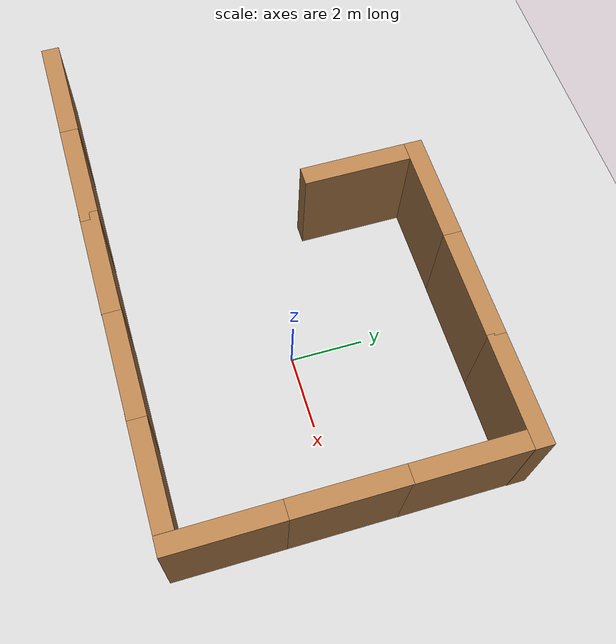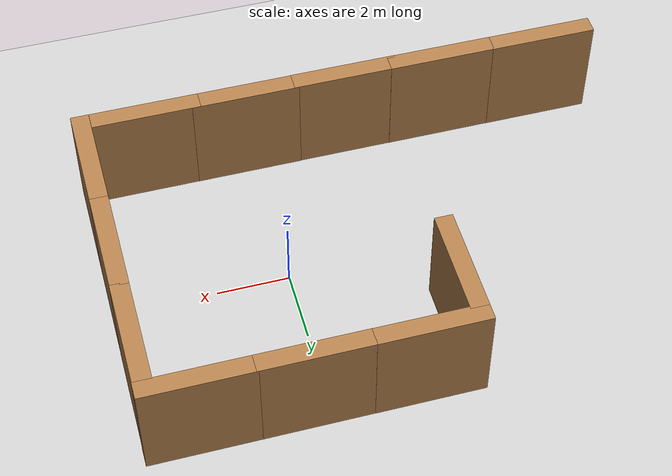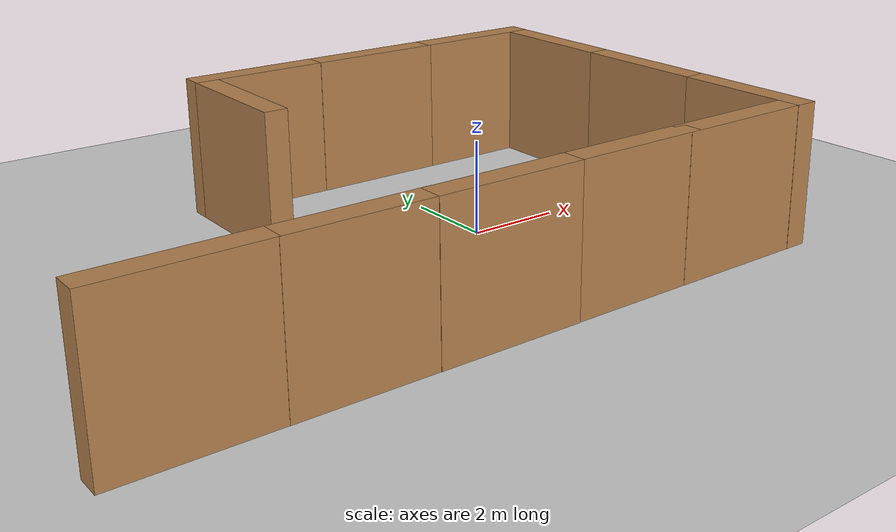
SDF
<sdf version='1.10'>
  <world name='world_wall'>
    <physics name='1ms' type='ignored'>
      <max_step_size>0.001</max_step_size>
      <real_time_factor>1</real_time_factor>
      <real_time_update_rate>1000</real_time_update_rate>
    </physics>
    <plugin name='gz::sim::systems::Physics' filename='gz-sim-physics-system'/>
    <plugin name='gz::sim::systems::UserCommands' filename='gz-sim-user-commands-system'/>
    <plugin name='gz::sim::systems::SceneBroadcaster' filename='gz-sim-scene-broadcaster-system'/>
    <plugin name='gz::sim::systems::Contact' filename='gz-sim-contact-system'/>
    <plugin name='gz::sim::systems::Sensors' filename='gz-sim-sensors-system'>
      <render_engine>ogre2</render_engine>
    </plugin>
    <gravity>0 0 -9.8000000000000007</gravity>
    <magnetic_field>5.5644999999999998e-06 2.2875799999999999e-05 -4.2388400000000002e-05</magnetic_field>
    <atmosphere type='adiabatic'/>
    <scene>
      <ambient>0.400000006 0.400000006 0.400000006 1</ambient>
      <background>0.699999988 0.699999988 0.699999988 1</background>
      <shadows>true</shadows>
    </scene>
    <model name='ground_plane'>
      <static>true</static>
      <link name='link'>
        <collision name='collision'>
          <geometry>
            <plane>
              <normal>0 0 1</normal>
              <size>100 100</size>
            </plane>
          </geometry>
          <surface>
            <friction>
              <ode/>
            </friction>
            <bounce/>
            <contact/>
          </surface>
        </collision>
        <visual name='visual'>
          <geometry>
            <plane>
              <normal>0 0 1</normal>
              <size>100 100</size>
            </plane>
          </geometry>
          <material>
            <ambient>0.800000012 0.800000012 0.800000012 1</ambient>
            <diffuse>0.800000012 0.800000012 0.800000012 1</diffuse>
            <specular>0.800000012 0.800000012 0.800000012 1</specular>
          </material>
        </visual>
        <pose>0 0 0 0 0 0</pose>
        <inertial>
          <pose>0 0 0 0 0 0</pose>
          <mass>1</mass>
          <inertia>
            <ixx>1</ixx>
            <ixy>0</ixy>
            <ixz>0</ixz>
            <iyy>1</iyy>
            <iyz>0</iyz>
            <izz>1</izz>
          </inertia>
        </inertial>
        <enable_wind>false</enable_wind>
      </link>
      <pose>0 0 0 0 0 0</pose>
      <self_collide>false</self_collide>
    </model>
    <model name='brick_box_3x1x3'>
      <static>true</static>
      <link name='chassis'>
        <pose>0 0 1.5 0 0 0</pose>
        <collision name='collision'>
          <geometry>
            <box>
              <size>3 0.5 3</size>
            </box>
          </geometry>
          <surface>
            <friction>
              <ode/>
            </friction>
            <bounce/>
            <contact/>
          </surface>
        </collision>
        <visual name='visual'>
          <geometry>
            <mesh>
              <uri>file:/home/dhairya/gazebo_models/brick_box_3x1x3/model://brick_box_3x1x3/meshes/simple_box.dae</uri>
              <scale>3 0.5 3</scale>
            </mesh>
          </geometry>
          <material>
            <diffuse>1 1 1 1</diffuse>
            <script>
              <uri>file://media/materials/scripts/gazebo.material</uri>
              <name>Gazebo/Wood</name>
            </script>
            <pbr>
              <metal>
                <albedo_map>model://brick_box_3x1x3/materials/textures/simple_box.png</albedo_map>
              </metal>
            </pbr>
          </material>
        </visual>
        <inertial>
          <pose>0 0 0 0 0 0</pose>
          <mass>1</mass>
          <inertia>
            <ixx>1</ixx>
            <ixy>0</ixy>
            <ixz>0</ixz>
            <iyy>1</iyy>
            <iyz>0</iyz>
            <izz>1</izz>
          </inertia>
        </inertial>
        <enable_wind>false</enable_wind>
      </link>
      <pose>-8.5015096664428711 -4.329890251159668 0 0 0 0</pose>
      <self_collide>false</self_collide>
    </model>
    <model name='brick_box_3x1x3_0'>
      <static>true</static>
      <link name='chassis'>
        <pose>0 0 1.5 0 0 0</pose>
        <collision name='collision'>
          <geometry>
            <box>
              <size>3 0.5 3</size>
            </box>
          </geometry>
          <surface>
            <friction>
              <ode/>
            </friction>
            <bounce/>
            <contact/>
          </surface>
        </collision>
        <visual name='visual'>
          <geometry>
            <mesh>
              <uri>file:/home/dhairya/gazebo_models/brick_box_3x1x3/model://brick_box_3x1x3/meshes/simple_box.dae</uri>
              <scale>3 0.5 3</scale>
            </mesh>
          </geometry>
          <material>
            <diffuse>1 1 1 1</diffuse>
            <script>
              <uri>file://media/materials/scripts/gazebo.material</uri>
              <name>Gazebo/Wood</name>
            </script>
            <pbr>
              <metal>
                <albedo_map>model://brick_box_3x1x3/materials/textures/simple_box.png</albedo_map>
              </metal>
            </pbr>
          </material>
        </visual>
        <inertial>
          <pose>0 0 0 0 0 0</pose>
          <mass>1</mass>
          <inertia>
            <ixx>1</ixx>
            <ixy>0</ixy>
            <ixz>0</ixz>
            <iyy>1</iyy>
            <iyz>0</iyz>
            <izz>1</izz>
          </inertia>
        </inertial>
        <enable_wind>false</enable_wind>
      </link>
      <pose>-5.5333199501037598 -4.333956241607666 0 0 0 0</pose>
      <self_collide>false</self_collide>
    </model>
    <model name='brick_box_3x1x3_1'>
      <static>true</static>
      <link name='chassis'>
        <pose>0 0 1.5 0 0 0</pose>
        <collision name='collision'>
          <geometry>
            <box>
              <size>3 0.5 3</size>
            </box>
          </geometry>
          <surface>
            <friction>
              <ode/>
            </friction>
            <bounce/>
            <contact/>
          </surface>
        </collision>
        <visual name='visual'>
          <geometry>
            <mesh>
              <uri>file:/home/dhairya/gazebo_models/brick_box_3x1x3/model://brick_box_3x1x3/meshes/simple_box.dae</uri>
              <scale>3 0.5 3</scale>
            </mesh>
          </geometry>
          <material>
            <diffuse>1 1 1 1</diffuse>
            <script>
              <uri>file://media/materials/scripts/gazebo.material</uri>
              <name>Gazebo/Wood</name>
            </script>
            <pbr>
              <metal>
                <albedo_map>model://brick_box_3x1x3/materials/textures/simple_box.png</albedo_map>
              </metal>
            </pbr>
          </material>
        </visual>
        <inertial>
          <pose>0 0 0 0 0 0</pose>
          <mass>1</mass>
          <inertia>
            <ixx>1</ixx>
            <ixy>0</ixy>
            <ixz>0</ixz>
            <iyy>1</iyy>
            <iyz>0</iyz>
            <izz>1</izz>
          </inertia>
        </inertial>
        <enable_wind>false</enable_wind>
      </link>
      <pose>-2.7655099999999999 -4.3396299999999997 0 0 0 0</pose>
      <self_collide>false</self_collide>
    </model>
    <model name='brick_box_3x1x3_2'>
      <static>true</static>
      <link name='chassis'>
        <pose>0 0 1.5 0 0 0</pose>
        <collision name='collision'>
          <geometry>
            <box>
              <size>3 0.5 3</size>
            </box>
          </geometry>
          <surface>
            <friction>
              <ode/>
            </friction>
            <bounce/>
            <contact/>
          </surface>
        </collision>
        <visual name='visual'>
          <geometry>
            <mesh>
              <uri>file:/home/dhairya/gazebo_models/brick_box_3x1x3/model://brick_box_3x1x3/meshes/simple_box.dae</uri>
              <scale>3 0.5 3</scale>
            </mesh>
          </geometry>
          <material>
            <diffuse>1 1 1 1</diffuse>
            <script>
              <uri>file://media/materials/scripts/gazebo.material</uri>
              <name>Gazebo/Wood</name>
            </script>
            <pbr>
              <metal>
                <albedo_map>model://brick_box_3x1x3/materials/textures/simple_box.png</albedo_map>
              </metal>
            </pbr>
          </material>
        </visual>
        <inertial>
          <pose>0 0 0 0 0 0</pose>
          <mass>1</mass>
          <inertia>
            <ixx>1</ixx>
            <ixy>0</ixy>
            <ixz>0</ixz>
            <iyy>1</iyy>
            <iyz>0</iyz>
            <izz>1</izz>
          </inertia>
        </inertial>
        <enable_wind>false</enable_wind>
      </link>
      <pose>0.110079 -4.3317600000000001 0 0 0 0</pose>
      <self_collide>false</self_collide>
    </model>
    <model name='brick_box_3x1x3_3'>
      <static>true</static>
      <link name='chassis'>
        <pose>0 0 1.5 0 0 0</pose>
        <collision name='collision'>
          <geometry>
            <box>
              <size>3 0.5 3</size>
            </box>
          </geometry>
          <surface>
            <friction>
              <ode/>
            </friction>
            <bounce/>
            <contact/>
          </surface>
        </collision>
        <visual name='visual'>
          <geometry>
            <mesh>
              <uri>file:/home/dhairya/gazebo_models/brick_box_3x1x3/model://brick_box_3x1x3/meshes/simple_box.dae</uri>
              <scale>3 0.5 3</scale>
            </mesh>
          </geometry>
          <material>
            <diffuse>1 1 1 1</diffuse>
            <script>
              <uri>file://media/materials/scripts/gazebo.material</uri>
              <name>Gazebo/Wood</name>
            </script>
            <pbr>
              <metal>
                <albedo_map>model://brick_box_3x1x3/materials/textures/simple_box.png</albedo_map>
              </metal>
            </pbr>
          </material>
        </visual>
        <inertial>
          <pose>0 0 0 0 0 0</pose>
          <mass>1</mass>
          <inertia>
            <ixx>1</ixx>
            <ixy>0</ixy>
            <ixz>0</ixz>
            <iyy>1</iyy>
            <iyz>0</iyz>
            <izz>1</izz>
          </inertia>
        </inertial>
        <enable_wind>false</enable_wind>
      </link>
      <pose>2.867 -4.3346499999999999 0 0 0 0</pose>
      <self_collide>false</self_collide>
    </model>
    <model name='brick_box_3x1x3_4'>
      <static>true</static>
      <link name='chassis'>
        <pose>0 0 1.5 0 0 0</pose>
        <collision name='collision'>
          <geometry>
            <box>
              <size>3 0.5 3</size>
            </box>
          </geometry>
          <surface>
            <friction>
              <ode/>
            </friction>
            <bounce/>
            <contact/>
          </surface>
        </collision>
        <visual name='visual'>
          <geometry>
            <mesh>
              <uri>file:/home/dhairya/gazebo_models/brick_box_3x1x3/model://brick_box_3x1x3/meshes/simple_box.dae</uri>
              <scale>3 0.5 3</scale>
            </mesh>
          </geometry>
          <material>
            <diffuse>1 1 1 1</diffuse>
            <script>
              <uri>file://media/materials/scripts/gazebo.material</uri>
              <name>Gazebo/Wood</name>
            </script>
            <pbr>
              <metal>
                <albedo_map>model://brick_box_3x1x3/materials/textures/simple_box.png</albedo_map>
              </metal>
            </pbr>
          </material>
        </visual>
        <inertial>
          <pose>0 0 0 0 0 0</pose>
          <mass>1</mass>
          <inertia>
            <ixx>1</ixx>
            <ixy>0</ixy>
            <ixz>0</ixz>
            <iyy>1</iyy>
            <iyz>0</iyz>
            <izz>1</izz>
          </inertia>
        </inertial>
        <enable_wind>false</enable_wind>
      </link>
      <pose>4.6212558746337891 -3.0876071453094482 0 -9.7390099049528367e-18 -3.4719400323208752e-18 1.5700000042340219</pose>
      <self_collide>false</self_collide>
    </model>
    <model name='brick_box_3x1x3_4_1'>
      <static>true</static>
      <link name='chassis'>
        <pose>0 0 1.5 0 0 0</pose>
        <collision name='collision'>
          <geometry>
            <box>
              <size>3 0.5 3</size>
            </box>
          </geometry>
          <surface>
            <friction>
              <ode/>
            </friction>
            <bounce/>
            <contact/>
          </surface>
        </collision>
        <visual name='visual'>
          <geometry>
            <mesh>
              <uri>file:/home/dhairya/gazebo_models/brick_box_3x1x3/model://brick_box_3x1x3/meshes/simple_box.dae</uri>
              <scale>3 0.5 3</scale>
            </mesh>
          </geometry>
          <material>
            <diffuse>1 1 1 1</diffuse>
            <script>
              <uri>file://media/materials/scripts/gazebo.material</uri>
              <name>Gazebo/Wood</name>
            </script>
            <pbr>
              <metal>
                <albedo_map>model://brick_box_3x1x3/materials/textures/simple_box.png</albedo_map>
              </metal>
            </pbr>
          </material>
        </visual>
        <inertial>
          <pose>0 0 0 0 0 0</pose>
          <mass>1</mass>
          <inertia>
            <ixx>1</ixx>
            <ixy>0</ixy>
            <ixz>0</ixz>
            <iyy>1</iyy>
            <iyz>0</iyz>
            <izz>1</izz>
          </inertia>
        </inertial>
        <enable_wind>false</enable_wind>
      </link>
      <pose>4.6235955510979592 -0.1318698789093441 0 -9.7390099049528367e-18 -3.4719400323208752e-18 1.5700000042340219</pose>
      <self_collide>false</self_collide>
    </model>
    <model name='brick_box_3x1x3_4_2'>
      <static>true</static>
      <link name='chassis'>
        <pose>0 0 1.5 0 0 0</pose>
        <collision name='collision'>
          <geometry>
            <box>
              <size>3 0.5 3</size>
            </box>
          </geometry>
          <surface>
            <friction>
              <ode/>
            </friction>
            <bounce/>
            <contact/>
          </surface>
        </collision>
        <visual name='visual'>
          <geometry>
            <mesh>
              <uri>file:/home/dhairya/gazebo_models/brick_box_3x1x3/model://brick_box_3x1x3/meshes/simple_box.dae</uri>
              <scale>3 0.5 3</scale>
            </mesh>
          </geometry>
          <material>
            <diffuse>1 1 1 1</diffuse>
            <script>
              <uri>file://media/materials/scripts/gazebo.material</uri>
              <name>Gazebo/Wood</name>
            </script>
            <pbr>
              <metal>
                <albedo_map>model://brick_box_3x1x3/materials/textures/simple_box.png</albedo_map>
              </metal>
            </pbr>
          </material>
        </visual>
        <inertial>
          <pose>0 0 0 0 0 0</pose>
          <mass>1</mass>
          <inertia>
            <ixx>1</ixx>
            <ixy>0</ixy>
            <ixz>0</ixz>
            <iyy>1</iyy>
            <iyz>0</iyz>
            <izz>1</izz>
          </inertia>
        </inertial>
        <enable_wind>false</enable_wind>
      </link>
      <pose>4.6302993688245735 2.8218137464086546 0 -9.7390099049528367e-18 -3.4719400323208752e-18 1.5700000042340219</pose>
      <self_collide>false</self_collide>
    </model>
    <model name='brick_box_3x1x3_3_1_2_1'>
      <static>true</static>
      <link name='chassis'>
        <pose>0 0 1.5 0 0 0</pose>
        <collision name='collision'>
          <geometry>
            <box>
              <size>3 0.5 3</size>
            </box>
          </geometry>
          <surface>
            <friction>
              <ode/>
            </friction>
            <bounce/>
            <contact/>
          </surface>
        </collision>
        <visual name='visual'>
          <geometry>
            <mesh>
              <uri>file:/home/dhairya/gazebo_models/brick_box_3x1x3/model://brick_box_3x1x3/meshes/simple_box.dae</uri>
              <scale>3 0.5 3</scale>
            </mesh>
          </geometry>
          <material>
            <diffuse>1 1 1 1</diffuse>
            <script>
              <uri>file://media/materials/scripts/gazebo.material</uri>
              <name>Gazebo/Wood</name>
            </script>
            <pbr>
              <metal>
                <albedo_map>model://brick_box_3x1x3/materials/textures/simple_box.png</albedo_map>
              </metal>
            </pbr>
          </material>
        </visual>
        <inertial>
          <pose>0 0 0 0 0 0</pose>
          <mass>1</mass>
          <inertia>
            <ixx>1</ixx>
            <ixy>0</ixy>
            <ixz>0</ixz>
            <iyy>1</iyy>
            <iyz>0</iyz>
            <izz>1</izz>
          </inertia>
        </inertial>
        <enable_wind>false</enable_wind>
      </link>
      <pose>3.3915872168274035 4.5564523991783332 0 0 0 0</pose>
      <self_collide>false</self_collide>
    </model>
    <model name='brick_box_3x1x3_0_1_1'>
      <static>true</static>
      <link name='chassis'>
        <pose>0 0 1.5 0 0 0</pose>
        <collision name='collision'>
          <geometry>
            <box>
              <size>3 0.5 3</size>
            </box>
          </geometry>
          <surface>
            <friction>
              <ode/>
            </friction>
            <bounce/>
            <contact/>
          </surface>
        </collision>
        <visual name='visual'>
          <geometry>
            <mesh>
              <uri>file:/home/dhairya/gazebo_models/brick_box_3x1x3/model://brick_box_3x1x3/meshes/simple_box.dae</uri>
              <scale>3 0.5 3</scale>
            </mesh>
          </geometry>
          <material>
            <diffuse>1 1 1 1</diffuse>
            <script>
              <uri>file://media/materials/scripts/gazebo.material</uri>
              <name>Gazebo/Wood</name>
            </script>
            <pbr>
              <metal>
                <albedo_map>model://brick_box_3x1x3/materials/textures/simple_box.png</albedo_map>
              </metal>
            </pbr>
          </material>
        </visual>
        <inertial>
          <pose>0 0 0 0 0 0</pose>
          <mass>1</mass>
          <inertia>
            <ixx>1</ixx>
            <ixy>0</ixy>
            <ixz>0</ixz>
            <iyy>1</iyy>
            <iyz>0</iyz>
            <izz>1</izz>
          </inertia>
        </inertial>
        <enable_wind>false</enable_wind>
      </link>
      <pose>0.44998649610012009 4.5563111805157703 0 0 0 0</pose>
      <self_collide>false</self_collide>
    </model>
    <model name='brick_box_3x1x3_0_1_1_1'>
      <static>true</static>
      <link name='chassis'>
        <pose>0 0 1.5 0 0 0</pose>
        <collision name='collision'>
          <geometry>
            <box>
              <size>3 0.5 3</size>
            </box>
          </geometry>
          <surface>
            <friction>
              <ode/>
            </friction>
            <bounce/>
            <contact/>
          </surface>
        </collision>
        <visual name='visual'>
          <geometry>
            <mesh>
              <uri>file:/home/dhairya/gazebo_models/brick_box_3x1x3/model://brick_box_3x1x3/meshes/simple_box.dae</uri>
              <scale>3 0.5 3</scale>
            </mesh>
          </geometry>
          <material>
            <diffuse>1 1 1 1</diffuse>
            <script>
              <uri>file://media/materials/scripts/gazebo.material</uri>
              <name>Gazebo/Wood</name>
            </script>
            <pbr>
              <metal>
                <albedo_map>model://brick_box_3x1x3/materials/textures/simple_box.png</albedo_map>
              </metal>
            </pbr>
          </material>
        </visual>
        <inertial>
          <pose>0 0 0 0 0 0</pose>
          <mass>1</mass>
          <inertia>
            <ixx>1</ixx>
            <ixy>0</ixy>
            <ixz>0</ixz>
            <iyy>1</iyy>
            <iyz>0</iyz>
            <izz>1</izz>
          </inertia>
        </inertial>
        <enable_wind>false</enable_wind>
      </link>
      <pose>-2.5400623491380649 4.5601506943076409 0 0 0 0</pose>
      <self_collide>false</self_collide>
    </model>
    <model name='brick_box_3x1x3_4_2_1'>
      <static>true</static>
      <link name='chassis'>
        <pose>0 0 1.5 0 0 0</pose>
        <collision name='collision'>
          <geometry>
            <box>
              <size>3 0.5 3</size>
            </box>
          </geometry>
          <surface>
            <friction>
              <ode/>
            </friction>
            <bounce/>
            <contact/>
          </surface>
        </collision>
        <visual name='visual'>
          <geometry>
            <mesh>
              <uri>file:/home/dhairya/gazebo_models/brick_box_3x1x3/model://brick_box_3x1x3/meshes/simple_box.dae</uri>
              <scale>3 0.5 3</scale>
            </mesh>
          </geometry>
          <material>
            <diffuse>1 1 1 1</diffuse>
            <script>
              <uri>file://media/materials/scripts/gazebo.material</uri>
              <name>Gazebo/Wood</name>
            </script>
            <pbr>
              <metal>
                <albedo_map>model://brick_box_3x1x3/materials/textures/simple_box.png</albedo_map>
              </metal>
            </pbr>
          </material>
        </visual>
        <inertial>
          <pose>0 0 0 0 0 0</pose>
          <mass>1</mass>
          <inertia>
            <ixx>1</ixx>
            <ixy>0</ixy>
            <ixz>0</ixz>
            <iyy>1</iyy>
            <iyz>0</iyz>
            <izz>1</izz>
          </inertia>
        </inertial>
        <enable_wind>false</enable_wind>
      </link>
      <pose>-3.7916710345356313 2.8769341881899617 0 -9.7390099049528367e-18 -3.4719400323208752e-18 1.5700000042340219</pose>
      <self_collide>false</self_collide>
    </model>
    <light name='sun' type='directional'>
      <pose>0 0 10 0 0 0</pose>
      <cast_shadows>true</cast_shadows>
      <intensity>1</intensity>
      <direction>-0.5 0.10000000000000001 -0.90000000000000002</direction>
      <diffuse>0.800000012 0.800000012 0.800000012 1</diffuse>
      <specular>0.200000003 0.200000003 0.200000003 1</specular>
      <attenuation>
        <range>1000</range>
        <linear>0.0099999997764825821</linear>
        <constant>0.89999997615814209</constant>
        <quadratic>0.0010000000474974513</quadratic>
      </attenuation>
      <spot>
        <inner_angle>0</inner_angle>
        <outer_angle>0</outer_angle>
        <falloff>0</falloff>
      </spot>
    </light>
  </world>
</sdf>
